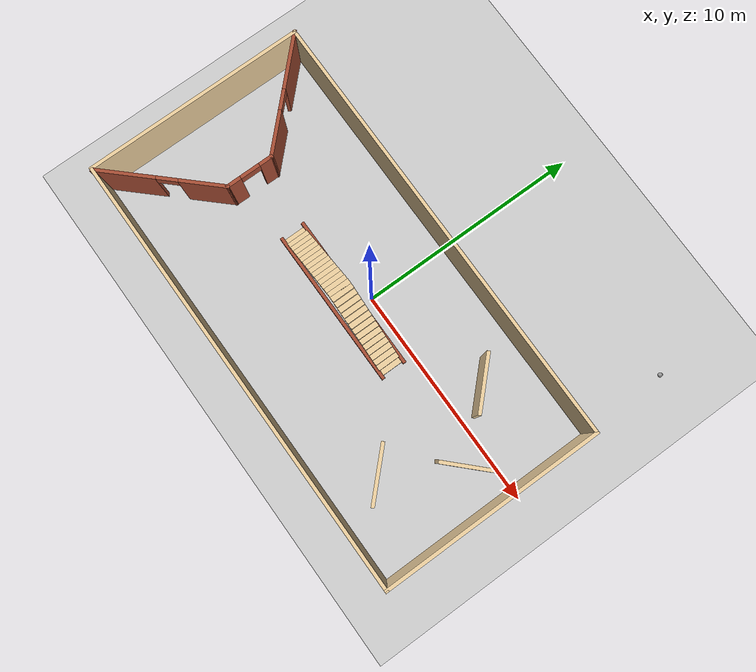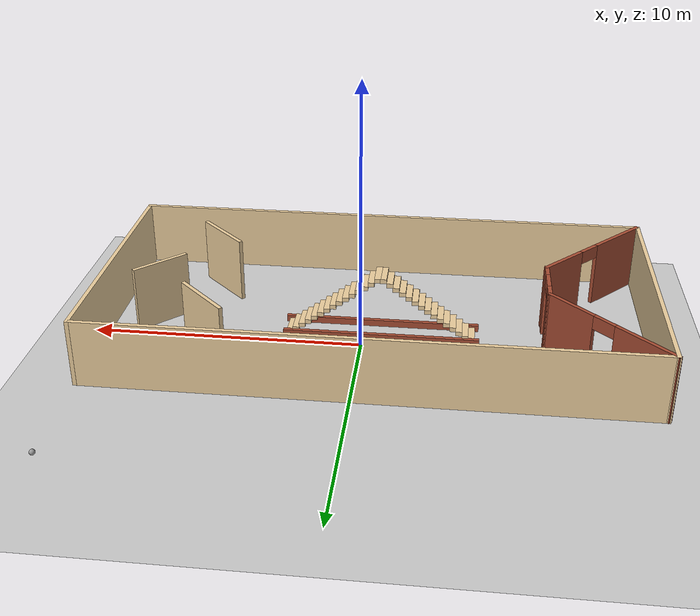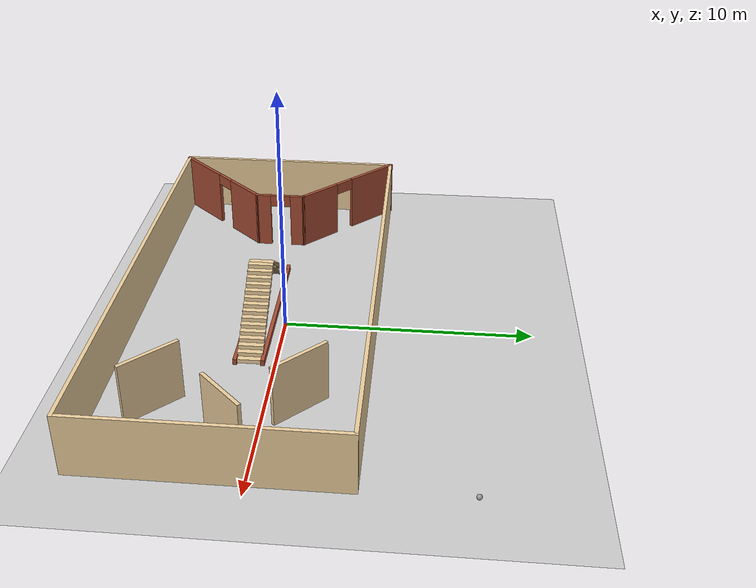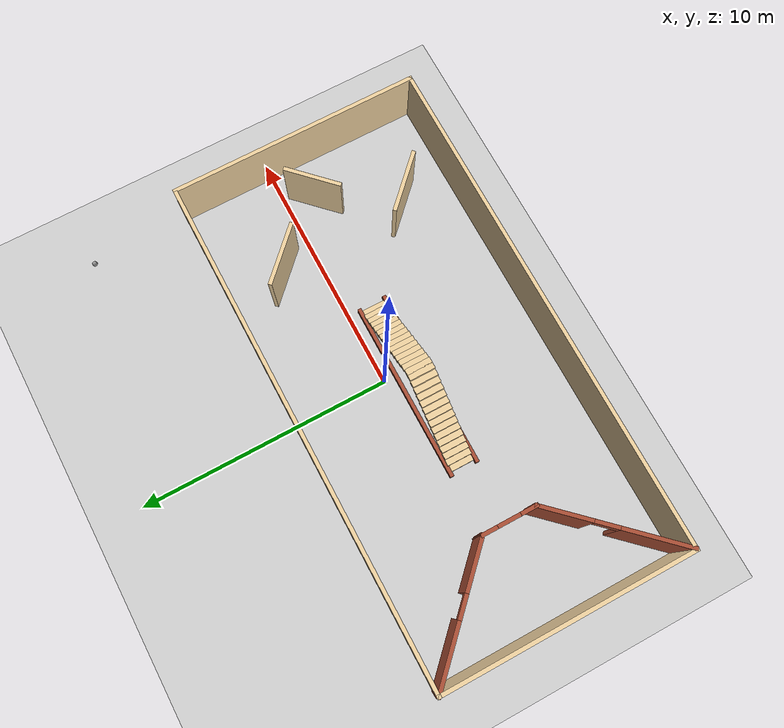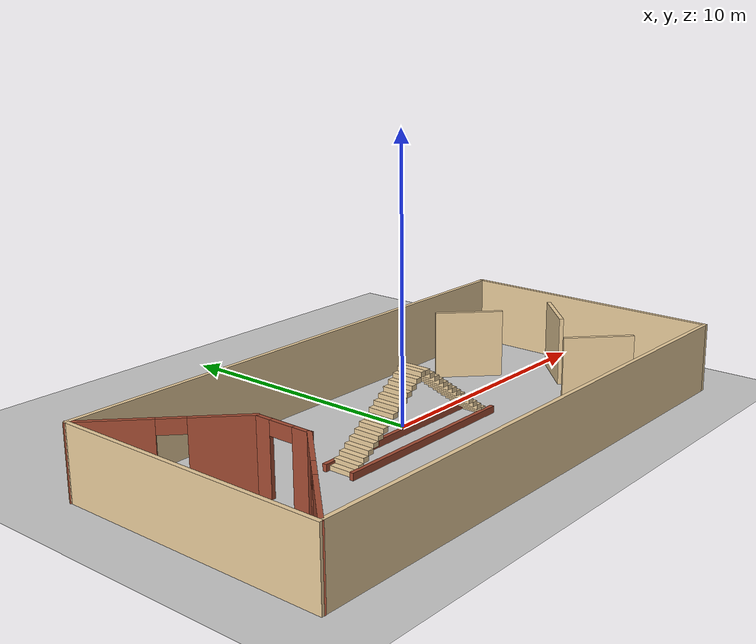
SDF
<sdf version="1.6">
 <world name="default">
  <light name="sun" type="directional">
   <pose>0 0 10 0 -0 0</pose>
   <diffuse>0.8 0.8 0.8 1</diffuse>
   <specular>0.2 0.2 0.2 1</specular>
   <attenuation>
    <range>1000</range>
    <constant>0.9</constant>
    <linear>0.01</linear>
    <quadratic>0.001</quadratic>
   </attenuation>
   <direction>-0.5 0.1 -0.9</direction>
  </light>
  <model name="ground_plane">
   <static>1</static>
   <link name="link">
    <collision name="collision">
     <geometry><plane><normal>0 0 1</normal><size>100 100</size></plane></geometry>
     <surface><friction><ode><mu>100</mu><mu2>50</mu2></ode></friction></surface>
    </collision>
    <visual name="visual">
     <cast_shadows>0</cast_shadows>
     <geometry><plane><normal>0 0 1</normal><size>100 100</size></plane></geometry>
     <material>
      <script><uri>file://media/materials/scripts/gazebo.material</uri><name>Gazebo/Grey</name></script>
     </material>
    </visual>
   </link>
  </model>
  <gravity>0 0 -9.8</gravity>
  <magnetic_field>6e-06 2.3e-05 -4.2e-05</magnetic_field>
  <atmosphere type="adiabatic"/>
  <physics name="default_physics" default="0" type="ode">
   <max_step_size>0.001</max_step_size>
   <real_time_factor>1</real_time_factor>
   <real_time_update_rate>1000</real_time_update_rate>
  </physics>
  <scene><ambient>0.4 0.4 0.4 1</ambient><background>0.7 0.7 0.7 1</background><shadows>1</shadows></scene>
  <spherical_coordinates>
   <surface_model>EARTH_WGS84</surface_model>
   <latitude_deg>0</latitude_deg>
   <longitude_deg>0</longitude_deg>
   <elevation>0</elevation>
   <heading_deg>0</heading_deg>
  </spherical_coordinates>
  <model name="worldchasesim">
   <pose>-0.494967 -1.2395 0 0 -0 0</pose>
   <link name="Stairs_0">
    <visual name="Stairs_0_Visual_0">
     <pose>3.21151 0.231825 0.083333 0 -0 -1.5708</pose>
     <geometry><box><size>1 0.233333 0.166667</size></box></geometry>
     <material>
      <script><uri>file://media/materials/scripts/gazebo.material</uri><name>Gazebo/Grey</name></script>
      <ambient>0.921569 0.807843 0.615686 1</ambient>
     </material>
     <meta><layer>0</layer></meta>
    </visual>
    <collision name="Stairs_0_Collision_0">
     <geometry><box><size>1 0.233333 0.166667</size></box></geometry>
     <pose>3.21151 0.231825 0.083333 0 -0 -1.5708</pose>
    </collision>
    <visual name="Stairs_0_Visual_1">
     <pose>2.97817 0.231825 0.25 0 -0 -1.5708</pose>
     <geometry><box><size>1 0.233333 0.166667</size></box></geometry>
     <material>
      <script><uri>file://media/materials/scripts/gazebo.material</uri><name>Gazebo/Grey</name></script>
      <ambient>0.921569 0.807843 0.615686 1</ambient>
     </material>
     <meta><layer>0</layer></meta>
    </visual>
    <collision name="Stairs_0_Collision_1">
     <geometry><box><size>1 0.233333 0.166667</size></box></geometry>
     <pose>2.97817 0.231825 0.25 0 -0 -1.5708</pose>
    </collision>
    <visual name="Stairs_0_Visual_2">
     <pose>2.74484 0.231825 0.416667 0 -0 -1.5708</pose>
     <geometry><box><size>1 0.233333 0.166667</size></box></geometry>
     <material>
      <script><uri>file://media/materials/scripts/gazebo.material</uri><name>Gazebo/Grey</name></script>
      <ambient>0.921569 0.807843 0.615686 1</ambient>
     </material>
     <meta><layer>0</layer></meta>
    </visual>
    <collision name="Stairs_0_Collision_2">
     <geometry><box><size>1 0.233333 0.166667</size></box></geometry>
     <pose>2.74484 0.231825 0.416667 0 -0 -1.5708</pose>
    </collision>
    <visual name="Stairs_0_Visual_3">
     <pose>2.51151 0.231825 0.583333 0 -0 -1.5708</pose>
     <geometry><box><size>1 0.233333 0.166667</size></box></geometry>
     <material>
      <script><uri>file://media/materials/scripts/gazebo.material</uri><name>Gazebo/Grey</name></script>
      <ambient>0.921569 0.807843 0.615686 1</ambient>
     </material>
     <meta><layer>0</layer></meta>
    </visual>
    <collision name="Stairs_0_Collision_3">
     <geometry><box><size>1 0.233333 0.166667</size></box></geometry>
     <pose>2.51151 0.231825 0.583333 0 -0 -1.5708</pose>
    </collision>
    <visual name="Stairs_0_Visual_4">
     <pose>2.27817 0.231825 0.75 0 -0 -1.5708</pose>
     <geometry><box><size>1 0.233333 0.166667</size></box></geometry>
     <material>
      <script><uri>file://media/materials/scripts/gazebo.material</uri><name>Gazebo/Grey</name></script>
      <ambient>0.921569 0.807843 0.615686 1</ambient>
     </material>
     <meta><layer>0</layer></meta>
    </visual>
    <collision name="Stairs_0_Collision_4">
     <geometry><box><size>1 0.233333 0.166667</size></box></geometry>
     <pose>2.27817 0.231825 0.75 0 -0 -1.5708</pose>
    </collision>
    <visual name="Stairs_0_Visual_5">
     <pose>2.04484 0.231825 0.916667 0 -0 -1.5708</pose>
     <geometry><box><size>1 0.233333 0.166667</size></box></geometry>
     <material>
      <script><uri>file://media/materials/scripts/gazebo.material</uri><name>Gazebo/Grey</name></script>
      <ambient>0.921569 0.807843 0.615686 1</ambient>
     </material>
     <meta><layer>0</layer></meta>
    </visual>
    <collision name="Stairs_0_Collision_5">
     <geometry><box><size>1 0.233333 0.166667</size></box></geometry>
     <pose>2.04484 0.231825 0.916667 0 -0 -1.5708</pose>
    </collision>
    <visual name="Stairs_0_Visual_6">
     <pose>1.81151 0.231825 1.08333 0 -0 -1.5708</pose>
     <geometry><box><size>1 0.233333 0.166667</size></box></geometry>
     <material>
      <script><uri>file://media/materials/scripts/gazebo.material</uri><name>Gazebo/Grey</name></script>
      <ambient>0.921569 0.807843 0.615686 1</ambient>
     </material>
     <meta><layer>0</layer></meta>
    </visual>
    <collision name="Stairs_0_Collision_6">
     <geometry><box><size>1 0.233333 0.166667</size></box></geometry>
     <pose>1.81151 0.231825 1.08333 0 -0 -1.5708</pose>
    </collision>
    <visual name="Stairs_0_Visual_7">
     <pose>1.57817 0.231825 1.25 0 -0 -1.5708</pose>
     <geometry><box><size>1 0.233333 0.166667</size></box></geometry>
     <material>
      <script><uri>file://media/materials/scripts/gazebo.material</uri><name>Gazebo/Grey</name></script>
      <ambient>0.921569 0.807843 0.615686 1</ambient>
     </material>
     <meta><layer>0</layer></meta>
    </visual>
    <collision name="Stairs_0_Collision_7">
     <geometry><box><size>1 0.233333 0.166667</size></box></geometry>
     <pose>1.57817 0.231825 1.25 0 -0 -1.5708</pose>
    </collision>
    <visual name="Stairs_0_Visual_8">
     <pose>1.34484 0.231825 1.41667 0 -0 -1.5708</pose>
     <geometry><box><size>1 0.233333 0.166667</size></box></geometry>
     <material>
      <script><uri>file://media/materials/scripts/gazebo.material</uri><name>Gazebo/Grey</name></script>
      <ambient>0.921569 0.807843 0.615686 1</ambient>
     </material>
     <meta><layer>0</layer></meta>
    </visual>
    <collision name="Stairs_0_Collision_8">
     <geometry><box><size>1 0.233333 0.166667</size></box></geometry>
     <pose>1.34484 0.231825 1.41667 0 -0 -1.5708</pose>
    </collision>
    <visual name="Stairs_0_Visual_9">
     <pose>1.11151 0.231825 1.58333 0 -0 -1.5708</pose>
     <geometry><box><size>1 0.233333 0.166667</size></box></geometry>
     <material>
      <script><uri>file://media/materials/scripts/gazebo.material</uri><name>Gazebo/Grey</name></script>
      <ambient>0.921569 0.807843 0.615686 1</ambient>
     </material>
     <meta><layer>0</layer></meta>
    </visual>
    <collision name="Stairs_0_Collision_9">
     <geometry><box><size>1 0.233333 0.166667</size></box></geometry>
     <pose>1.11151 0.231825 1.58333 0 -0 -1.5708</pose>
    </collision>
    <visual name="Stairs_0_Visual_10">
     <pose>0.878173 0.231825 1.75 0 -0 -1.5708</pose>
     <geometry><box><size>1 0.233333 0.166667</size></box></geometry>
     <material>
      <script><uri>file://media/materials/scripts/gazebo.material</uri><name>Gazebo/Grey</name></script>
      <ambient>0.921569 0.807843 0.615686 1</ambient>
     </material>
     <meta><layer>0</layer></meta>
    </visual>
    <collision name="Stairs_0_Collision_10">
     <geometry><box><size>1 0.233333 0.166667</size></box></geometry>
     <pose>0.878173 0.231825 1.75 0 -0 -1.5708</pose>
    </collision>
    <visual name="Stairs_0_Visual_11">
     <pose>0.64484 0.231825 1.91667 0 -0 -1.5708</pose>
     <geometry><box><size>1 0.233333 0.166667</size></box></geometry>
     <material>
      <script><uri>file://media/materials/scripts/gazebo.material</uri><name>Gazebo/Grey</name></script>
      <ambient>0.921569 0.807843 0.615686 1</ambient>
     </material>
     <meta><layer>0</layer></meta>
    </visual>
    <collision name="Stairs_0_Collision_11">
     <geometry><box><size>1 0.233333 0.166667</size></box></geometry>
     <pose>0.64484 0.231825 1.91667 0 -0 -1.5708</pose>
    </collision>
    <visual name="Stairs_0_Visual_12">
     <pose>0.411506 0.231825 2.08333 0 -0 -1.5708</pose>
     <geometry><box><size>1 0.233333 0.166667</size></box></geometry>
     <material>
      <script><uri>file://media/materials/scripts/gazebo.material</uri><name>Gazebo/Grey</name></script>
      <ambient>0.921569 0.807843 0.615686 1</ambient>
     </material>
     <meta><layer>0</layer></meta>
    </visual>
    <collision name="Stairs_0_Collision_12">
     <geometry><box><size>1 0.233333 0.166667</size></box></geometry>
     <pose>0.411506 0.231825 2.08333 0 -0 -1.5708</pose>
    </collision>
    <visual name="Stairs_0_Visual_13">
     <pose>0.178173 0.231825 2.25 0 -0 -1.5708</pose>
     <geometry><box><size>1 0.233333 0.166667</size></box></geometry>
     <material>
      <script><uri>file://media/materials/scripts/gazebo.material</uri><name>Gazebo/Grey</name></script>
      <ambient>0.921569 0.807843 0.615686 1</ambient>
     </material>
     <meta><layer>0</layer></meta>
    </visual>
    <collision name="Stairs_0_Collision_13">
     <geometry><box><size>1 0.233333 0.166667</size></box></geometry>
     <pose>0.178173 0.231825 2.25 0 -0 -1.5708</pose>
    </collision>
    <visual name="Stairs_0_Visual_14">
     <pose>-0.05516 0.231826 2.41667 0 -0 -1.5708</pose>
     <geometry><box><size>1 0.233333 0.166667</size></box></geometry>
     <material>
      <script><uri>file://media/materials/scripts/gazebo.material</uri><name>Gazebo/Grey</name></script>
      <ambient>0.921569 0.807843 0.615686 1</ambient>
     </material>
     <meta><layer>0</layer></meta>
    </visual>
    <collision name="Stairs_0_Collision_14">
     <geometry><box><size>1 0.233333 0.166667</size></box></geometry>
     <pose>-0.05516 0.231826 2.41667 0 -0 -1.5708</pose>
    </collision>
   </link>
   <link name="Stairs_1">
    <visual name="Stairs_1_Visual_0">
     <pose>-3.53208 0.234378 0.083333 0 -0 1.5708</pose>
     <geometry><box><size>1 0.233333 0.166667</size></box></geometry>
     <material>
      <script><uri>file://media/materials/scripts/gazebo.material</uri><name>Gazebo/Grey</name></script>
      <ambient>0.921569 0.807843 0.615686 1</ambient>
     </material>
     <meta><layer>0</layer></meta>
    </visual>
    <collision name="Stairs_1_Collision_0">
     <geometry><box><size>1 0.233333 0.166667</size></box></geometry>
     <pose>-3.53208 0.234378 0.083333 0 -0 1.5708</pose>
    </collision>
    <visual name="Stairs_1_Visual_1">
     <pose>-3.29875 0.234378 0.25 0 -0 1.5708</pose>
     <geometry><box><size>1 0.233333 0.166667</size></box></geometry>
     <material>
      <script><uri>file://media/materials/scripts/gazebo.material</uri><name>Gazebo/Grey</name></script>
      <ambient>0.921569 0.807843 0.615686 1</ambient>
     </material>
     <meta><layer>0</layer></meta>
    </visual>
    <collision name="Stairs_1_Collision_1">
     <geometry><box><size>1 0.233333 0.166667</size></box></geometry>
     <pose>-3.29875 0.234378 0.25 0 -0 1.5708</pose>
    </collision>
    <visual name="Stairs_1_Visual_2">
     <pose>-3.06541 0.234378 0.416667 0 -0 1.5708</pose>
     <geometry><box><size>1 0.233333 0.166667</size></box></geometry>
     <material>
      <script><uri>file://media/materials/scripts/gazebo.material</uri><name>Gazebo/Grey</name></script>
      <ambient>0.921569 0.807843 0.615686 1</ambient>
     </material>
     <meta><layer>0</layer></meta>
    </visual>
    <collision name="Stairs_1_Collision_2">
     <geometry><box><size>1 0.233333 0.166667</size></box></geometry>
     <pose>-3.06541 0.234378 0.416667 0 -0 1.5708</pose>
    </collision>
    <visual name="Stairs_1_Visual_3">
     <pose>-2.83208 0.234378 0.583333 0 -0 1.5708</pose>
     <geometry><box><size>1 0.233333 0.166667</size></box></geometry>
     <material>
      <script><uri>file://media/materials/scripts/gazebo.material</uri><name>Gazebo/Grey</name></script>
      <ambient>0.921569 0.807843 0.615686 1</ambient>
     </material>
     <meta><layer>0</layer></meta>
    </visual>
    <collision name="Stairs_1_Collision_3">
     <geometry><box><size>1 0.233333 0.166667</size></box></geometry>
     <pose>-2.83208 0.234378 0.583333 0 -0 1.5708</pose>
    </collision>
    <visual name="Stairs_1_Visual_4">
     <pose>-2.59875 0.234378 0.75 0 -0 1.5708</pose>
     <geometry><box><size>1 0.233333 0.166667</size></box></geometry>
     <material>
      <script><uri>file://media/materials/scripts/gazebo.material</uri><name>Gazebo/Grey</name></script>
      <ambient>0.921569 0.807843 0.615686 1</ambient>
     </material>
     <meta><layer>0</layer></meta>
    </visual>
    <collision name="Stairs_1_Collision_4">
     <geometry><box><size>1 0.233333 0.166667</size></box></geometry>
     <pose>-2.59875 0.234378 0.75 0 -0 1.5708</pose>
    </collision>
    <visual name="Stairs_1_Visual_5">
     <pose>-2.36541 0.234378 0.916667 0 -0 1.5708</pose>
     <geometry><box><size>1 0.233333 0.166667</size></box></geometry>
     <material>
      <script><uri>file://media/materials/scripts/gazebo.material</uri><name>Gazebo/Grey</name></script>
      <ambient>0.921569 0.807843 0.615686 1</ambient>
     </material>
     <meta><layer>0</layer></meta>
    </visual>
    <collision name="Stairs_1_Collision_5">
     <geometry><box><size>1 0.233333 0.166667</size></box></geometry>
     <pose>-2.36541 0.234378 0.916667 0 -0 1.5708</pose>
    </collision>
    <visual name="Stairs_1_Visual_6">
     <pose>-2.13208 0.234378 1.08333 0 -0 1.5708</pose>
     <geometry><box><size>1 0.233333 0.166667</size></box></geometry>
     <material>
      <script><uri>file://media/materials/scripts/gazebo.material</uri><name>Gazebo/Grey</name></script>
      <ambient>0.921569 0.807843 0.615686 1</ambient>
     </material>
     <meta><layer>0</layer></meta>
    </visual>
    <collision name="Stairs_1_Collision_6">
     <geometry><box><size>1 0.233333 0.166667</size></box></geometry>
     <pose>-2.13208 0.234378 1.08333 0 -0 1.5708</pose>
    </collision>
    <visual name="Stairs_1_Visual_7">
     <pose>-1.89875 0.234378 1.25 0 -0 1.5708</pose>
     <geometry><box><size>1 0.233333 0.166667</size></box></geometry>
     <material>
      <script><uri>file://media/materials/scripts/gazebo.material</uri><name>Gazebo/Grey</name></script>
      <ambient>0.921569 0.807843 0.615686 1</ambient>
     </material>
     <meta><layer>0</layer></meta>
    </visual>
    <collision name="Stairs_1_Collision_7">
     <geometry><box><size>1 0.233333 0.166667</size></box></geometry>
     <pose>-1.89875 0.234378 1.25 0 -0 1.5708</pose>
    </collision>
    <visual name="Stairs_1_Visual_8">
     <pose>-1.66541 0.234378 1.41667 0 -0 1.5708</pose>
     <geometry><box><size>1 0.233333 0.166667</size></box></geometry>
     <material>
      <script><uri>file://media/materials/scripts/gazebo.material</uri><name>Gazebo/Grey</name></script>
      <ambient>0.921569 0.807843 0.615686 1</ambient>
     </material>
     <meta><layer>0</layer></meta>
    </visual>
    <collision name="Stairs_1_Collision_8">
     <geometry><box><size>1 0.233333 0.166667</size></box></geometry>
     <pose>-1.66541 0.234378 1.41667 0 -0 1.5708</pose>
    </collision>
    <visual name="Stairs_1_Visual_9">
     <pose>-1.43208 0.234378 1.58333 0 -0 1.5708</pose>
     <geometry><box><size>1 0.233333 0.166667</size></box></geometry>
     <material>
      <script><uri>file://media/materials/scripts/gazebo.material</uri><name>Gazebo/Grey</name></script>
      <ambient>0.921569 0.807843 0.615686 1</ambient>
     </material>
     <meta><layer>0</layer></meta>
    </visual>
    <collision name="Stairs_1_Collision_9">
     <geometry><box><size>1 0.233333 0.166667</size></box></geometry>
     <pose>-1.43208 0.234378 1.58333 0 -0 1.5708</pose>
    </collision>
    <visual name="Stairs_1_Visual_10">
     <pose>-1.19875 0.234378 1.75 0 -0 1.5708</pose>
     <geometry><box><size>1 0.233333 0.166667</size></box></geometry>
     <material>
      <script><uri>file://media/materials/scripts/gazebo.material</uri><name>Gazebo/Grey</name></script>
      <ambient>0.921569 0.807843 0.615686 1</ambient>
     </material>
     <meta><layer>0</layer></meta>
    </visual>
    <collision name="Stairs_1_Collision_10">
     <geometry><box><size>1 0.233333 0.166667</size></box></geometry>
     <pose>-1.19875 0.234378 1.75 0 -0 1.5708</pose>
    </collision>
    <visual name="Stairs_1_Visual_11">
     <pose>-0.965413 0.234378 1.91667 0 -0 1.5708</pose>
     <geometry><box><size>1 0.233333 0.166667</size></box></geometry>
     <material>
      <script><uri>file://media/materials/scripts/gazebo.material</uri><name>Gazebo/Grey</name></script>
      <ambient>0.921569 0.807843 0.615686 1</ambient>
     </material>
     <meta><layer>0</layer></meta>
    </visual>
    <collision name="Stairs_1_Collision_11">
     <geometry><box><size>1 0.233333 0.166667</size></box></geometry>
     <pose>-0.965413 0.234378 1.91667 0 -0 1.5708</pose>
    </collision>
    <visual name="Stairs_1_Visual_12">
     <pose>-0.732079 0.234378 2.08333 0 -0 1.5708</pose>
     <geometry><box><size>1 0.233333 0.166667</size></box></geometry>
     <material>
      <script><uri>file://media/materials/scripts/gazebo.material</uri><name>Gazebo/Grey</name></script>
      <ambient>0.921569 0.807843 0.615686 1</ambient>
     </material>
     <meta><layer>0</layer></meta>
    </visual>
    <collision name="Stairs_1_Collision_12">
     <geometry><box><size>1 0.233333 0.166667</size></box></geometry>
     <pose>-0.732079 0.234378 2.08333 0 -0 1.5708</pose>
    </collision>
    <visual name="Stairs_1_Visual_13">
     <pose>-0.498746 0.234378 2.25 0 -0 1.5708</pose>
     <geometry><box><size>1 0.233333 0.166667</size></box></geometry>
     <material>
      <script><uri>file://media/materials/scripts/gazebo.material</uri><name>Gazebo/Grey</name></script>
      <ambient>0.921569 0.807843 0.615686 1</ambient>
     </material>
     <meta><layer>0</layer></meta>
    </visual>
    <collision name="Stairs_1_Collision_13">
     <geometry><box><size>1 0.233333 0.166667</size></box></geometry>
     <pose>-0.498746 0.234378 2.25 0 -0 1.5708</pose>
    </collision>
    <visual name="Stairs_1_Visual_14">
     <pose>-0.265413 0.234378 2.41667 0 -0 1.5708</pose>
     <geometry><box><size>1 0.233333 0.166667</size></box></geometry>
     <material>
      <script><uri>file://media/materials/scripts/gazebo.material</uri><name>Gazebo/Grey</name></script>
      <ambient>0.921569 0.807843 0.615686 1</ambient>
     </material>
     <meta><layer>0</layer></meta>
    </visual>
    <collision name="Stairs_1_Collision_14">
     <geometry><box><size>1 0.233333 0.166667</size></box></geometry>
     <pose>-0.265413 0.234378 2.41667 0 -0 1.5708</pose>
    </collision>
   </link>
   <link name="Wall_0">
    <collision name="Wall_0_Collision">
     <geometry><box><size>10 0.15 2.5</size></box></geometry>
     <pose>0 0 1.25 0 -0 0</pose>
    </collision>
    <visual name="Wall_0_Visual">
     <pose>0 0 1.25 0 -0 0</pose>
     <geometry><box><size>10 0.15 2.5</size></box></geometry>
     <material>
      <script><uri>file://media/materials/scripts/gazebo.material</uri><name>Gazebo/Grey</name></script>
      <ambient>0.921569 0.807843 0.615686 1</ambient>
     </material>
     <meta><layer>0</layer></meta>
    </visual>
    <pose>-9.95952 -2.5e-05 0 0 0 -1.5708</pose>
   </link>
   <link name="Wall_1">
    <collision name="Wall_1_Collision">
     <geometry><box><size>20.0466 0.15 2.5</size></box></geometry>
     <pose>0 0 1.25 0 -0 0</pose>
    </collision>
    <visual name="Wall_1_Visual">
     <pose>0 0 1.25 0 -0 0</pose>
     <geometry><box><size>20.0466 0.15 2.5</size></box></geometry>
     <material>
      <script><uri>file://media/materials/scripts/gazebo.material</uri><name>Gazebo/Grey</name></script>
      <ambient>0.921569 0.807843 0.615686 1</ambient>
     </material>
     <meta><layer>0</layer></meta>
    </visual>
    <pose>0.042284 -4.92502 0 0 -0 0</pose>
   </link>
   <link name="Wall_12">
    <collision name="Wall_12_Collision">
     <geometry><box><size>10 0.15 2.5</size></box></geometry>
     <pose>0 0 1.25 0 -0 0</pose>
    </collision>
    <visual name="Wall_12_Visual">
     <pose>0 0 1.25 0 -0 0</pose>
     <geometry><box><size>10 0.15 2.5</size></box></geometry>
     <material>
      <script><uri>file://media/materials/scripts/gazebo.material</uri><name>Gazebo/Grey</name></script>
      <ambient>0.921569 0.807843 0.615686 1</ambient>
     </material>
     <meta><layer>0</layer></meta>
    </visual>
    <pose>9.99059 -2.5e-05 0 0 -0 1.5708</pose>
   </link>
   <link name="Wall_15">
    <collision name="Wall_15_Collision">
     <geometry><box><size>20 0.15 2.5</size></box></geometry>
     <pose>0 0 1.25 0 -0 0</pose>
    </collision>
    <visual name="Wall_15_Visual">
     <pose>0 0 1.25 0 -0 0</pose>
     <geometry><box><size>20 0.15 2.5</size></box></geometry>
     <material>
      <script><uri>file://media/materials/scripts/gazebo.material</uri><name>Gazebo/Grey</name></script>
      <ambient>0.921569 0.807843 0.615686 1</ambient>
     </material>
     <meta><layer>0</layer></meta>
    </visual>
    <pose>-0.034521 4.92497 0 0 -0 0</pose>
   </link>
   <link name="Wall_17">
    <pose>-8.06801 3.03346 0 0 0 -0.785398</pose>
    <visual name="Wall_17_Visual_0">
     <pose>-1.47597 0 1.25 0 -0 0</pose>
     <geometry><box><size>2.54806 0.15 2.5</size></box></geometry>
     <material>
      <script><uri>file://media/materials/scripts/gazebo.material</uri><name>Gazebo/Bricks</name></script>
      <ambient>1 1 1 1</ambient>
     </material>
     <meta><layer>0</layer></meta>
    </visual>
    <collision name="Wall_17_Collision_0">
     <geometry><box><size>2.54806 0.15 2.5</size></box></geometry>
     <pose>-1.47597 0 1.25 0 -0 0</pose>
    </collision>
    <visual name="Wall_17_Visual_1">
     <pose>1.72403 0 1.25 0 -0 0</pose>
     <geometry><box><size>2.05194 0.15 2.5</size></box></geometry>
     <material>
      <script><uri>file://media/materials/scripts/gazebo.material</uri><name>Gazebo/Bricks</name></script>
      <ambient>1 1 1 1</ambient>
     </material>
     <meta><layer>0</layer></meta>
    </visual>
    <collision name="Wall_17_Collision_1">
     <geometry><box><size>2.05194 0.15 2.5</size></box></geometry>
     <pose>1.72403 0 1.25 0 -0 0</pose>
    </collision>
    <visual name="Wall_17_Visual_2">
     <pose>0.248064 0 2.25 0 -0 0</pose>
     <geometry><box><size>0.9 0.15 0.5</size></box></geometry>
     <material>
      <script><uri>file://media/materials/scripts/gazebo.material</uri><name>Gazebo/Bricks</name></script>
      <ambient>1 1 1 1</ambient>
     </material>
     <meta><layer>0</layer></meta>
    </visual>
    <collision name="Wall_17_Collision_2">
     <geometry><box><size>0.9 0.15 0.5</size></box></geometry>
     <pose>0.248064 0 2.25 0 -0 0</pose>
    </collision>
   </link>
   <link name="Wall_18">
    <pose>-6.1765 0.091953 0 0 0 -1.5708</pose>
    <visual name="Wall_18_Visual_0">
     <pose>-0.797404 0 1.25 0 -0 0</pose>
     <geometry><box><size>0.655192 0.15 2.5</size></box></geometry>
     <material>
      <script><uri>file://media/materials/scripts/gazebo.material</uri><name>Gazebo/Bricks</name></script>
      <ambient>1 1 1 1</ambient>
     </material>
     <meta><layer>0</layer></meta>
    </visual>
    <collision name="Wall_18_Collision_0">
     <geometry><box><size>0.655192 0.15 2.5</size></box></geometry>
     <pose>-0.797404 0 1.25 0 -0 0</pose>
    </collision>
    <visual name="Wall_18_Visual_1">
     <pose>0.777596 0 1.25 0 -0 0</pose>
     <geometry><box><size>0.694808 0.15 2.5</size></box></geometry>
     <material>
      <script><uri>file://media/materials/scripts/gazebo.material</uri><name>Gazebo/Bricks</name></script>
      <ambient>1 1 1 1</ambient>
     </material>
     <meta><layer>0</layer></meta>
    </visual>
    <collision name="Wall_18_Collision_1">
     <geometry><box><size>0.694808 0.15 2.5</size></box></geometry>
     <pose>0.777596 0 1.25 0 -0 0</pose>
    </collision>
    <visual name="Wall_18_Visual_2">
     <pose>-0.019808 0 2.25 0 -0 0</pose>
     <geometry><box><size>0.9 0.15 0.5</size></box></geometry>
     <material>
      <script><uri>file://media/materials/scripts/gazebo.material</uri><name>Gazebo/Bricks</name></script>
      <ambient>1 1 1 1</ambient>
     </material>
     <meta><layer>0</layer></meta>
    </visual>
    <collision name="Wall_18_Collision_2">
     <geometry><box><size>0.9 0.15 0.5</size></box></geometry>
     <pose>-0.019808 0 2.25 0 -0 0</pose>
    </collision>
   </link>
   <link name="Wall_19">
    <pose>-8.04126 -2.94154 0 0 0 -2.32535</pose>
    <visual name="Wall_19_Visual_0">
     <pose>-1.76664 0 1.25 0 -0 0</pose>
     <geometry><box><size>2.06156 0.15 2.5</size></box></geometry>
     <material>
      <script><uri>file://media/materials/scripts/gazebo.material</uri><name>Gazebo/Bricks</name></script>
      <ambient>1 1 1 1</ambient>
     </material>
     <meta><layer>0</layer></meta>
    </visual>
    <collision name="Wall_19_Collision_0">
     <geometry><box><size>2.06156 0.15 2.5</size></box></geometry>
     <pose>-1.76664 0 1.25 0 -0 0</pose>
    </collision>
    <visual name="Wall_19_Visual_1">
     <pose>1.48078 0 1.25 0 -0 0</pose>
     <geometry><box><size>2.63328 0.15 2.5</size></box></geometry>
     <material>
      <script><uri>file://media/materials/scripts/gazebo.material</uri><name>Gazebo/Bricks</name></script>
      <ambient>1 1 1 1</ambient>
     </material>
     <meta><layer>0</layer></meta>
    </visual>
    <collision name="Wall_19_Collision_1">
     <geometry><box><size>2.63328 0.15 2.5</size></box></geometry>
     <pose>1.48078 0 1.25 0 -0 0</pose>
    </collision>
    <visual name="Wall_19_Visual_2">
     <pose>-0.285861 0 2.25 0 -0 0</pose>
     <geometry><box><size>0.9 0.15 0.5</size></box></geometry>
     <material>
      <script><uri>file://media/materials/scripts/gazebo.material</uri><name>Gazebo/Bricks</name></script>
      <ambient>1 1 1 1</ambient>
     </material>
     <meta><layer>0</layer></meta>
    </visual>
    <collision name="Wall_19_Collision_2">
     <geometry><box><size>0.9 0.15 0.5</size></box></geometry>
     <pose>-0.285861 0 2.25 0 -0 0</pose>
    </collision>
   </link>
   <link name="Wall_21">
    <collision name="Wall_21_Collision">
     <geometry><box><size>2.5 0.15 2.5</size></box></geometry>
     <pose>0 0 1.25 0 -0 0</pose>
    </collision>
    <visual name="Wall_21_Visual">
     <pose>0 0 1.25 0 -0 0</pose>
     <geometry><box><size>2.5 0.15 2.5</size></box></geometry>
     <material>
      <script><uri>file://media/materials/scripts/gazebo.material</uri><name>Gazebo/Grey</name></script>
      <ambient>0.921569 0.807843 0.615686 1</ambient>
     </material>
     <meta><layer>0</layer></meta>
    </visual>
    <pose>5.97343 2.59113 0 0 -0 2.35619</pose>
   </link>
   <link name="Wall_23">
    <collision name="Wall_23_Collision">
     <geometry><box><size>2.25 0.15 2.5</size></box></geometry>
     <pose>0 0 1.25 0 -0 0</pose>
    </collision>
    <visual name="Wall_23_Visual">
     <pose>0 0 1.25 0 -0 0</pose>
     <geometry><box><size>2.25 0.15 2.5</size></box></geometry>
     <material>
      <script><uri>file://media/materials/scripts/gazebo.material</uri><name>Gazebo/Grey</name></script>
      <ambient>0.921569 0.807843 0.615686 1</ambient>
     </material>
     <meta><layer>0</layer></meta>
    </visual>
    <pose>8.12796 0.20848 0 0 -0 0.785398</pose>
   </link>
   <link name="Wall_25">
    <collision name="Wall_25_Collision">
     <geometry><box><size>2.5 0.15 2.5</size></box></geometry>
     <pose>0 0 1.25 0 -0 0</pose>
    </collision>
    <visual name="Wall_25_Visual">
     <pose>0 0 1.25 0 -0 0</pose>
     <geometry><box><size>2.5 0.15 2.5</size></box></geometry>
     <material>
      <script><uri>file://media/materials/scripts/gazebo.material</uri><name>Gazebo/Grey</name></script>
      <ambient>0.921569 0.807843 0.615686 1</ambient>
     </material>
     <meta><layer>0</layer></meta>
    </visual>
    <pose>6.38094 -2.7108 0 0 0 -0.785398</pose>
   </link>
   <link name="Wall_27">
    <collision name="Wall_27_Collision">
     <geometry><box><size>7.25 0.15 0.25</size></box></geometry>
     <pose>0 0 0.125 0 -0 0</pose>
    </collision>
    <visual name="Wall_27_Visual">
     <pose>0 0 0.125 0 -0 0</pose>
     <geometry><box><size>7.25 0.15 0.25</size></box></geometry>
     <material>
      <script><uri>file://media/materials/scripts/gazebo.material</uri><name>Gazebo/Bricks</name></script>
      <ambient>1 1 1 1</ambient>
     </material>
     <meta><layer>0</layer></meta>
    </visual>
    <pose>-0.166451 -0.310078 0 0 -0 0</pose>
   </link>
   <link name="Wall_29">
    <collision name="Wall_29_Collision">
     <geometry><box><size>7.25 0.15 0.25</size></box></geometry>
     <pose>0 0 0.125 0 -0 0</pose>
    </collision>
    <visual name="Wall_29_Visual">
     <pose>0 0 0.125 0 -0 0</pose>
     <geometry><box><size>7.25 0.15 0.25</size></box></geometry>
     <material>
      <script><uri>file://media/materials/scripts/gazebo.material</uri><name>Gazebo/Bricks</name></script>
      <ambient>1 1 1 1</ambient>
     </material>
     <meta><layer>0</layer></meta>
    </visual>
    <pose>-0.196033 0.769504 0 0 -0 0</pose>
   </link>
   <static>1</static>
  </model>
  <model name="my_ball">
   <link name="link_0">
    <inertial>
     <mass>1</mass>
     <inertia><ixx>0.1</ixx><ixy>0</ixy><ixz>0</ixz><iyy>0.1</iyy><iyz>0</iyz><izz>0.1</izz></inertia>
    </inertial>
    <visual name="visual">
     <geometry><sphere><radius>0.1</radius></sphere></geometry>
     <material>
      <lighting>1</lighting>
      <script><uri>file://media/materials/scripts/gazebo.material</uri><name>Gazebo/Grey</name></script>
      <shader type="pixel"><normal_map>__default__</normal_map></shader>
      <ambient>1 1 1 1</ambient>
      <diffuse>1 1 1 1</diffuse>
      <specular>1 1 1 1</specular>
      <emissive>1 1 1 1</emissive>
     </material>
    </visual>
    <collision name="collision">
     <geometry><sphere><radius>0.1</radius></sphere></geometry>
     <surface>
      <friction>
       <ode><mu>1</mu><mu2>1</mu2><fdir1>0 0 0</fdir1><slip1>0</slip1><slip2>0</slip2></ode>
       <torsional>
        <coefficient>1</coefficient>
        <patch_radius>0</patch_radius>
        <surface_radius>0</surface_radius>
        <use_patch_radius>1</use_patch_radius>
        <ode><slip>0</slip></ode>
       </torsional>
      </friction>
      <bounce><restitution_coefficient>0</restitution_coefficient><threshold>1e+06</threshold></bounce>
      <contact>
       <collide_without_contact>0</collide_without_contact>
       <collide_without_contact_bitmask>1</collide_without_contact_bitmask>
       <collide_bitmask>1</collide_bitmask>
       <ode>
        <soft_cfm>0</soft_cfm>
        <soft_erp>0.2</soft_erp>
        <kp>1e+13</kp>
        <kd>1</kd>
        <max_vel>0.01</max_vel>
        <min_depth>0</min_depth>
       </ode>
       <bullet>
        <split_impulse>1</split_impulse>
        <split_impulse_penetration_threshold>-0.01</split_impulse_penetration_threshold>
        <soft_cfm>0</soft_cfm>
        <soft_erp>0.2</soft_erp>
        <kp>1e+13</kp>
        <kd>1</kd>
       </bullet>
      </contact>
     </surface>
    </collision>
   </link>
   <static>0</static>
   <pose>9.42965 7.68569 0.1 0 -0 0</pose>
  </model>
  <plugin filename="libcollision_map_creator.so" name="collision_map_creator"/>
 </world>
</sdf>
